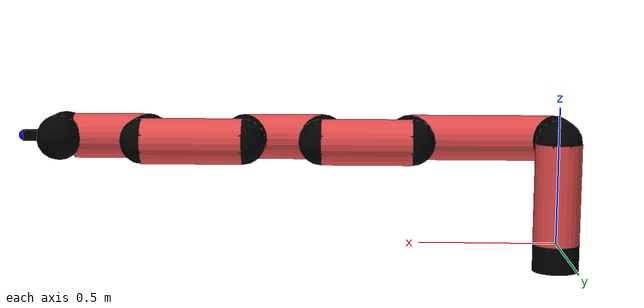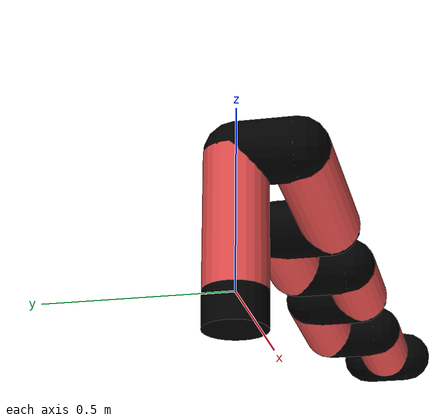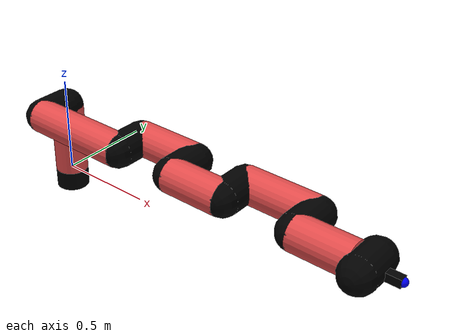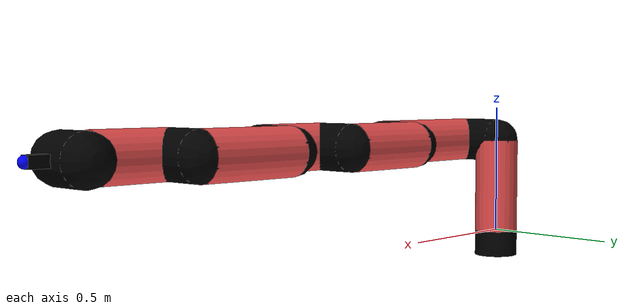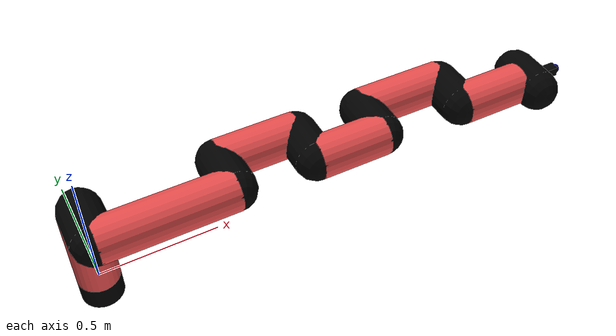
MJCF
<mujoco model="manipulator">
		<compiler angle="degree" coordinate="local" inertiafromgeom="auto" meshdir="meshes/"/>
		<option gravity="0 0 0" integrator="RK4" iterations="30" timestep="0.01"/>

		<default>
		<joint armature="1" limited="true" stiffness="10" damping="15" frictionloss="5.0"/>
		<geom conaffinity="1" condim="3" contype="1" friction=".5 .1 .1" margin="0.002"/>
		<motor ctrllimited="true"/>
		<position ctrllimited="true"/>
		</default>

		<asset>
		<texture builtin="gradient" height="100" rgb1="1.0 1.0 1.0" rgb2="1.0 1.0 1.0" type="skybox" width="100"/>
		<texture builtin="flat" height="32" name="arm_tex" rgb1="0.9 0.3 0.3" type="2d" width="32"/>
		<texture builtin="flat" height="32" name="gripper_tex" rgb1="0.0 0.0 0.0" type="cube" width="32"/>

		<material name="arm_mat" shininess="0.1" specular="0.1" texture="arm_tex"/>
		<material name="gripper_mat" shininess="1" specular="1" texture="gripper_tex"/>
		</asset>

		<worldbody>
		<light cutoff="45" diffuse=".8 .8 .8" dir="0 0.16 -1" directional="false" name="light" pos="0 -2.0 8.0" specular="0.3 0.3 0.3"/>

		<body name="base_link" pos="0 0 -0.1">
		<geom fromto="0 0 0 0 0 0.1" material="arm_mat" name="base_link" rgba="0.0 0.0 0.0 1" size="0.085" type="cylinder"/>
		</body>

		<body name="l1" pos="0 0 0">
<geom fromto="0 0 0 0 0 0.37" material="arm_mat" name="l1" rgba="0.9 0.3 0.3 1" size="0.085" type="cylinder"/>
<geom fromto="0 0 0.37 0 -0.16 0.37" material="arm_mat" name="l1_ex" rgba="0.0 0.0 0.0 1" size="0.085" type="capsule"/>
<joint axis="0 0 1" name="j1" pos="0 0 0" range="-90 90" damping="23.69" frictionloss="12.01"/>

<body name="l2" pos="0 -0.16 0.37">
<geom fromto="0 0 0 0.53 0 0" material="arm_mat" name="l2" rgba="0.9 0.3 0.3 1" size="0.085" type="cylinder"/>
<geom fromto="0.53 0 0 0.53 0.16 0" material="arm_mat" name="l2_ex" rgba="0.0 0.0 0.0 1" size="0.085" type="capsule"/>
<joint axis="0.0 1.0 0.0" name="j2" pos="0 0 0" range="-90 60" damping="32.39" frictionloss="11.77"/>

<body name="l3" pos="0.53 0.16 0">
<geom fromto="0 0 0 0.33 0 0" material="arm_mat" name="l3" rgba="0.9 0.3 0.3 1" size="0.085" type="cylinder"/>
<geom fromto="0.33 0 0 0.33 -0.16 0" material="arm_mat" name="l3_ex" rgba="0.0 0.0 0.0 1" size="0.085" type="capsule"/>
<joint axis="0.0 1.0 0.0" name="j3" pos="0 0 0" range="-30 60" damping="33.81" frictionloss="12.11"/>

<body name="l4" pos="0.33 -0.16 0">
<geom fromto="0 0 0 0.29 0 0" material="arm_mat" name="l4" rgba="0.9 0.3 0.3 1" size="0.085" type="cylinder"/>
<geom fromto="0.29 0 0 0.29 0.16 0" material="arm_mat" name="l4_ex" rgba="0.0 0.0 0.0 1" size="0.085" type="capsule"/>
<joint axis="0.0 1.0 0.0" name="j4" pos="0 0 0" range="-30 60" damping="33.79" frictionloss="10.92"/>

<body name="l5" pos="0.29 0.16 0">
<geom fromto="0 0 0 0.37 0 0" material="arm_mat" name="l5" rgba="0.9 0.3 0.3 1" size="0.085" type="cylinder"/>
<geom fromto="0.37 0 0 0.37 -0.16 0" material="arm_mat" name="l5_ex" rgba="0.0 0.0 0.0 1" size="0.085" type="capsule"/>
<joint axis="0.0 1.0 0.0" name="j5" pos="0 0 0" range="-30 60" damping="23.2" frictionloss="8.44"/>

<body name="l6" pos="0.37 -0.16 0">
<geom fromto="0 0 0 0.28 0 0" material="arm_mat" name="l6" rgba="0.9 0.3 0.3 1" size="0.085" type="cylinder"/>
<joint axis="0.0 1.0 0.0" name="j6" pos="0 0 0" range="-30 60" damping="36.58" frictionloss="12.46"/>

<body name="gripper" pos="0.28 0 0">
<geom fromto="0.05 -0.07 0 0.05 0.07 0" material="gripper_mat" name="gripper" rgba="0.0 0.0 0.0 1" size="0.085" type="capsule"/><joint axis="1 0 0" name="j7" pos="0 0 0" range="-90 90" damping="15" frictionloss="5.0"/><body name="finger" pos="0.1 0 0">
<geom fromto="0 0.0 0 0.1 0.0 0" material="gripper_mat" name="finger" rgba="0.0 0.0 0.0 1" size="0.020 0.06 0.06" type="box"/>
</body>
<site name="current" pos="0.2 0. 0.0" rgba="0. 0. 1.0 1" size="0.02" type="sphere"/>
</body>
</body>
</body>
</body>
</body>
</body>
</body>
</worldbody>
<actuator>
<motor ctrllimited="true" ctrlrange="-1.0 1.0" joint="j1" gear="96.55"/>
<motor ctrllimited="true" ctrlrange="-1.0 1.0" joint="j2" gear="93.44"/>
<motor ctrllimited="true" ctrlrange="-1.0 1.0" joint="j3" gear="69.66"/>
<motor ctrllimited="true" ctrlrange="-1.0 1.0" joint="j4" gear="76.04"/>
<motor ctrllimited="true" ctrlrange="-1.0 1.0" joint="j5" gear="65.9"/>
<motor ctrllimited="true" ctrlrange="-1.0 1.0" joint="j6" gear="90.84"/>
<motor ctrllimited="true" ctrlrange="-1.0 1.0" joint="j7" gear="80"/>
</actuator>
</mujoco>
